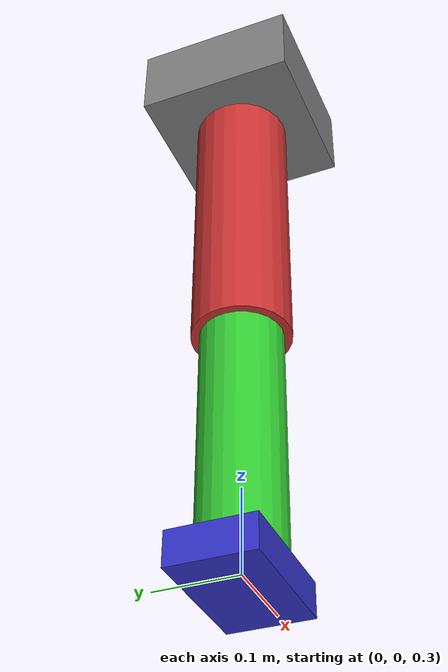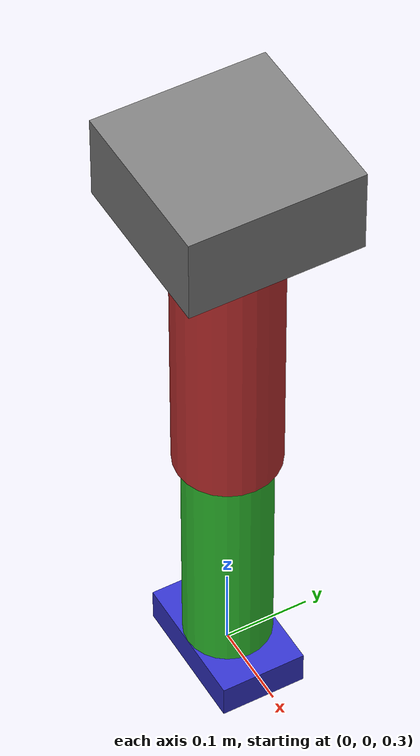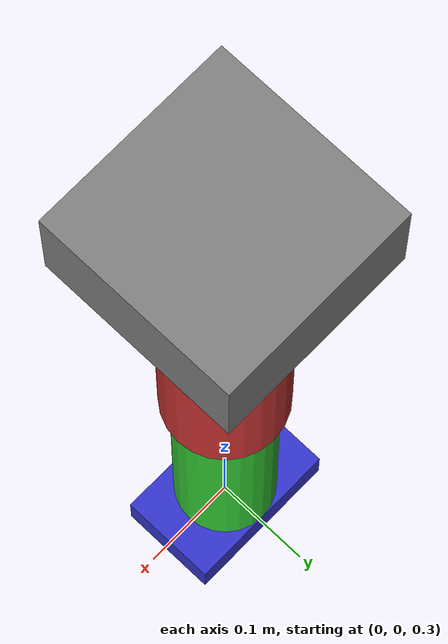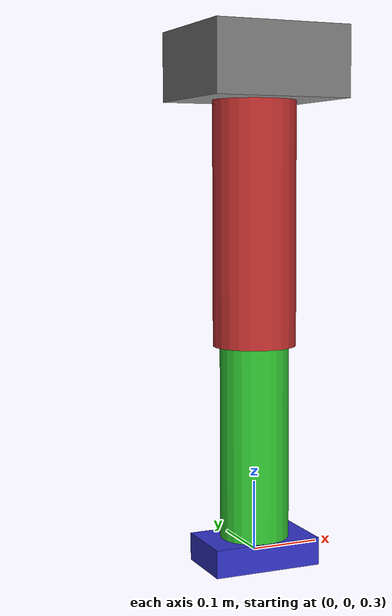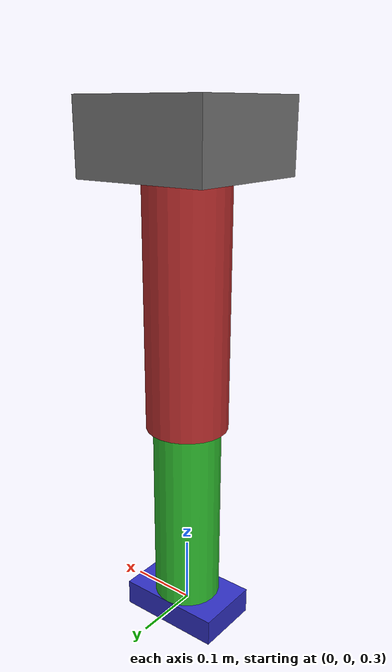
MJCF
<?xml version="1.0"?>
<!-- Muscle-actuated leg example -->
<mujoco model="muscle_leg">
  <option timestep="0.002" gravity="0 0 -9.81"/>

  <worldbody>
    <!-- Pelvis -->
    <body name="pelvis" pos="0 0 1">
      <geom type="box" size="0.1 0.1 0.05" rgba="0.5 0.5 0.5 1"/>

      <!-- Thigh -->
      <body name="thigh" pos="0 0 -0.2">
        <joint name="hip" type="hinge" axis="0 1 0" range="-3.14 3.14"/>
        <geom type="cylinder" size="0.06 0.2" rgba="0.8 0.2 0.2 1"/>

        <!-- Shank -->
        <body name="shank" pos="0 0 -0.3">
          <joint name="knee" type="hinge" axis="0 1 0" range="-3.14 0"/>
          <geom type="cylinder" size="0.05 0.2" rgba="0.2 0.8 0.2 1"/>

          <!-- Foot -->
          <body name="foot" pos="0 0 -0.2">
            <geom type="box" size="0.08 0.05 0.02" rgba="0.2 0.2 0.8 1"/>
          </body>
        </body>
      </body>
    </body>
  </worldbody>

  <!-- Muscle actuators (simplified - would use custom muscle dynamics) -->
  <actuator>
    <motor name="hip_flexor" joint="hip" gear="1.0"/>
    <motor name="knee_flexor" joint="knee" gear="1.0"/>
  </actuator>
</mujoco>
